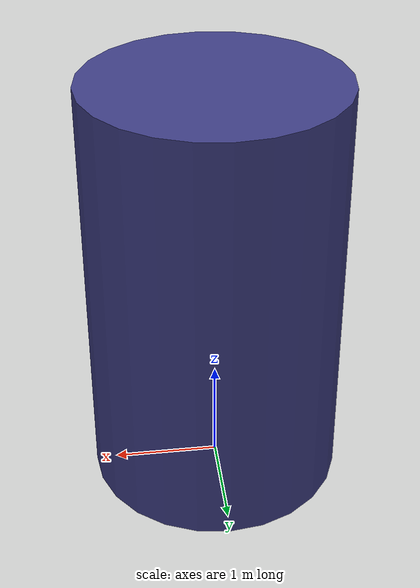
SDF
<?xml version="1.0" ?>
<sdf version="1.8">
  <world name="adhesion_model_test">
    <gravity>0 0 -9.8</gravity>
    <physics name="1ms" type="ignored">
      <max_step_size>0.001</max_step_size>
      <real_time_factor>1.0</real_time_factor>
    </physics>

    <plugin filename="gz-sim-physics-system" name="gz::sim::systems::Physics"/>
    <plugin filename="gz-sim-user-commands-system" name="gz::sim::systems::UserCommands"/>
    <plugin filename="gz-sim-apply-link-wrench-system" name="gz::sim::systems::ApplyLinkWrench"/>
    <plugin filename="gz-sim-contact-system" name="gz::sim::systems::Contact"/>
    <plugin filename="gz-sim-scene-broadcaster-system" name="gz::sim::systems::SceneBroadcaster"/>

    <light type="directional" name="sun">
      <cast_shadows>true</cast_shadows>
      <pose>0 0 10 0 0 0</pose>
      <diffuse>0.8 0.8 0.8 1</diffuse>
      <specular>0.2 0.2 0.2 1</specular>
      <direction>-0.5 0.1 -0.9</direction>
    </light>

    <model name="steel_vertical_pipe">
      <static>true</static>
      <pose>0.0 0.0 2.0 0 0 0</pose>
      <link name="pipe_link">
        <collision name="steel_vertical_pipe_collision">
          <geometry><cylinder><radius>1.20</radius><length>4.0</length></cylinder></geometry>
          <surface>
            <friction><ode><mu>1.6</mu><mu2>1.6</mu2></ode></friction>
            <contact>
              <ode>
                <kp>250000</kp>
                <kd>80</kd>
                <max_vel>0.20</max_vel>
                <min_depth>0.006</min_depth>
              </ode>
            </contact>
          </surface>
        </collision>
        <visual name="visual">
          <geometry><cylinder><radius>1.20</radius><length>4.0</length></cylinder></geometry>
          <material>
            <ambient>0.12 0.12 0.20 1</ambient>
            <diffuse>0.24 0.24 0.52 1</diffuse>
          </material>
        </visual>
      </link>
    </model>
  </world>
</sdf>
